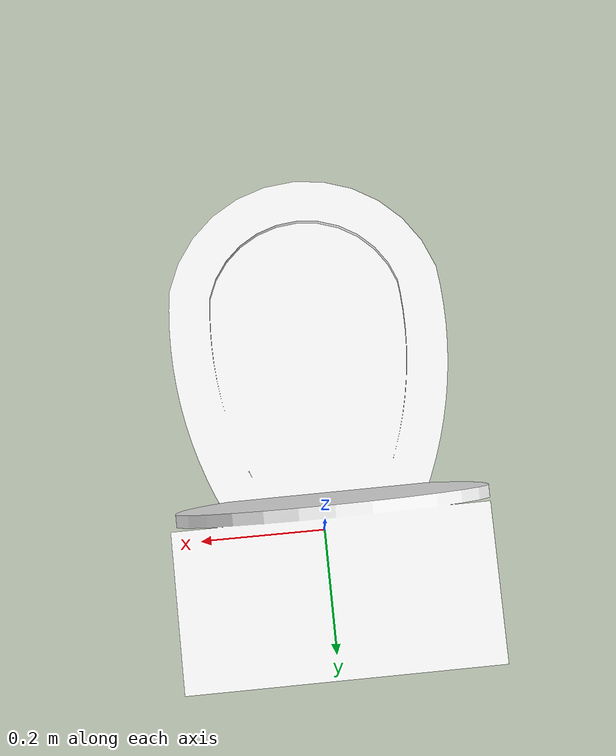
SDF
<?xml version="1.0" ?>
<sdf version="1.5">
  <model name="toilet_white_1">
    <link name="link">
      <pose>0 0 0 0 0 0</pose>
      <collision name="collision">
        <geometry>
          <mesh>
            <uri>model://toilet_white_1/meshes/model.dae</uri>
          </mesh>
        </geometry>
      </collision>
      <visual name="visual">
        <geometry>
          <mesh>
            <uri>model://toilet_white_1/meshes/model.dae</uri>
          </mesh>
        </geometry>
      </visual>
    </link>
    <static>1</static>
  </model>
</sdf>
